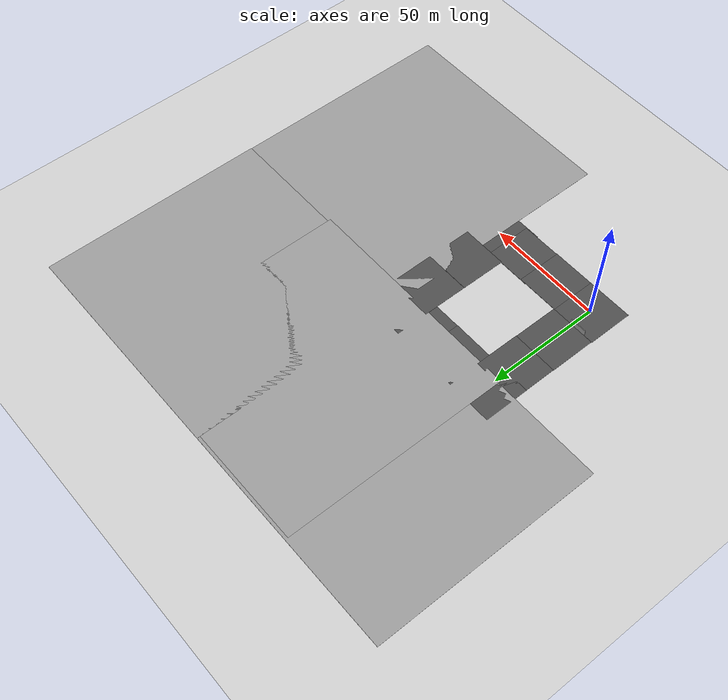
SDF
<sdf version="1.6">
 <world name="default">
  <model name="ground_plane">
   <static>1</static>
   <link name="link">
    <collision name="collision">
     <geometry><plane><normal>0 0 1</normal><size>100 100</size></plane></geometry>
     <surface><friction><ode><mu>100</mu><mu2>50</mu2></ode></friction></surface>
    </collision>
    <visual name="visual">
     <cast_shadows>0</cast_shadows>
     <geometry><plane><normal>0 0 1</normal><size>100 100</size></plane></geometry>
     <material>
      <script><uri>file://media/materials/scripts/gazebo.material</uri><name>Gazebo/Grey</name></script>
     </material>
    </visual>
   </link>
  </model>
  <gravity>0 0 -9.8</gravity>
  <magnetic_field>6e-06 2.3e-05 -4.2e-05</magnetic_field>
  <atmosphere type="adiabatic"/>
  <physics name="default_physics" default="0" type="ode">
   <max_step_size>0.001</max_step_size>
   <real_time_factor>1</real_time_factor>
   <real_time_update_rate>1000</real_time_update_rate>
  </physics>
  <scene><ambient>0.4 0.4 0.4 1</ambient><background>0.7 0.7 0.7 1</background><shadows>1</shadows></scene>
  <audio><device>default</device></audio>
  <spherical_coordinates>
   <surface_model>EARTH_WGS84</surface_model>
   <latitude_deg>0</latitude_deg>
   <longitude_deg>0</longitude_deg>
   <elevation>0</elevation>
   <heading_deg>0</heading_deg>
  </spherical_coordinates>
  <model name="asphalt_plane">
   <static>1</static>
   <link name="link">
    <collision name="collision"><geometry><box><size>20 20 0.1</size></box></geometry></collision>
    <visual name="visual">
     <cast_shadows>0</cast_shadows>
     <geometry><box><size>20 20 0.1</size></box></geometry>
     <material>
      <script>
       <uri>model://asphalt_plane/materials/scripts</uri>
       <uri>model://asphalt_plane/materials/textures</uri>
       <name>vrc/asphalt</name>
      </script>
     </material>
    </visual>
   </link>
   <pose>-0.606607 -0.198248 0 0 -0 0</pose>
  </model>
  <model name="asphalt_plane_clone">
   <static>1</static>
   <link name="link">
    <collision name="collision"><geometry><box><size>20 20 0.1</size></box></geometry></collision>
    <visual name="visual">
     <cast_shadows>0</cast_shadows>
     <geometry><box><size>20 20 0.1</size></box></geometry>
     <material>
      <script>
       <uri>model://asphalt_plane/materials/scripts</uri>
       <uri>model://asphalt_plane/materials/textures</uri>
       <name>vrc/asphalt</name>
      </script>
     </material>
    </visual>
   </link>
   <pose>17.9485 -0.170404 0 0 -0 0</pose>
  </model>
  <model name="asphalt_plane_clone_0">
   <static>1</static>
   <link name="link">
    <collision name="collision"><geometry><box><size>20 20 0.1</size></box></geometry></collision>
    <visual name="visual">
     <cast_shadows>0</cast_shadows>
     <geometry><box><size>20 20 0.1</size></box></geometry>
     <material>
      <script>
       <uri>model://asphalt_plane/materials/scripts</uri>
       <uri>model://asphalt_plane/materials/textures</uri>
       <name>vrc/asphalt</name>
      </script>
     </material>
    </visual>
   </link>
   <pose>35.1442 0.006259 0 0 -0 0</pose>
  </model>
  <model name="ground_plane_0">
   <static>1</static>
   <link name="link">
    <collision name="collision">
     <geometry><plane><normal>0 0 1</normal><size>100 100</size></plane></geometry>
     <surface>
      <contact><collide_bitmask>65535</collide_bitmask></contact>
      <friction><ode><mu>100</mu><mu2>50</mu2></ode></friction>
     </surface>
    </collision>
    <visual name="visual">
     <cast_shadows>0</cast_shadows>
     <geometry><plane><normal>0 0 1</normal><size>100 100</size></plane></geometry>
     <material>
      <script><uri>file://media/materials/scripts/gazebo.material</uri><name>Gazebo/Grey</name></script>
     </material>
    </visual>
   </link>
   <pose>99.8119 -0.012743 0 0 -0 0</pose>
  </model>
  <model name="ground_plane_1">
   <static>1</static>
   <link name="link">
    <collision name="collision">
     <geometry><plane><normal>0 0 1</normal><size>100 100</size></plane></geometry>
     <surface>
      <contact><collide_bitmask>65535</collide_bitmask></contact>
      <friction><ode><mu>100</mu><mu2>50</mu2></ode></friction>
     </surface>
    </collision>
    <visual name="visual">
     <cast_shadows>0</cast_shadows>
     <geometry><plane><normal>0 0 1</normal><size>100 100</size></plane></geometry>
     <material>
      <script><uri>file://media/materials/scripts/gazebo.material</uri><name>Gazebo/Grey</name></script>
     </material>
    </visual>
   </link>
   <pose>-0.11187 99.6243 0 0 -0 0</pose>
  </model>
  <model name="ground_plane_2">
   <static>1</static>
   <link name="link">
    <collision name="collision">
     <geometry><plane><normal>0 0 1</normal><size>100 100</size></plane></geometry>
     <surface>
      <contact><collide_bitmask>65535</collide_bitmask></contact>
      <friction><ode><mu>100</mu><mu2>50</mu2></ode></friction>
     </surface>
    </collision>
    <visual name="visual">
     <cast_shadows>0</cast_shadows>
     <geometry><plane><normal>0 0 1</normal><size>100 100</size></plane></geometry>
     <material>
      <script><uri>file://media/materials/scripts/gazebo.material</uri><name>Gazebo/Grey</name></script>
     </material>
    </visual>
   </link>
   <pose>99.9943 99.6471 0 0 -0 0</pose>
  </model>
  <model name="asphalt_plane_0">
   <static>1</static>
   <link name="link">
    <collision name="collision"><geometry><box><size>20 20 0.1</size></box></geometry></collision>
    <visual name="visual">
     <cast_shadows>0</cast_shadows>
     <geometry><box><size>20 20 0.1</size></box></geometry>
     <material>
      <script>
       <uri>model://asphalt_plane/materials/scripts</uri>
       <uri>model://asphalt_plane/materials/textures</uri>
       <name>vrc/asphalt</name>
      </script>
     </material>
    </visual>
   </link>
   <pose>48.9633 -0.284448 0 0 -0 0</pose>
  </model>
  <model name="asphalt_plane_clone_2">
   <static>1</static>
   <link name="link">
    <collision name="collision"><geometry><box><size>20 20 0.1</size></box></geometry></collision>
    <visual name="visual">
     <cast_shadows>0</cast_shadows>
     <geometry><box><size>20 20 0.1</size></box></geometry>
     <material>
      <script>
       <uri>model://asphalt_plane/materials/scripts</uri>
       <uri>model://asphalt_plane/materials/textures</uri>
       <name>vrc/asphalt</name>
      </script>
     </material>
    </visual>
   </link>
   <pose>48.8467 19.6802 0 0 -0 0</pose>
  </model>
  <model name="asphalt_plane_clone_3">
   <static>1</static>
   <link name="link">
    <collision name="collision"><geometry><box><size>20 20 0.1</size></box></geometry></collision>
    <visual name="visual">
     <cast_shadows>0</cast_shadows>
     <geometry><box><size>20 20 0.1</size></box></geometry>
     <material>
      <script>
       <uri>model://asphalt_plane/materials/scripts</uri>
       <uri>model://asphalt_plane/materials/textures</uri>
       <name>vrc/asphalt</name>
      </script>
     </material>
    </visual>
   </link>
   <pose>48.7888 53.8213 0 0 -0 0</pose>
  </model>
  <model name="asphalt_plane_clone_2_clone">
   <static>1</static>
   <link name="link">
    <collision name="collision"><geometry><box><size>20 20 0.1</size></box></geometry></collision>
    <visual name="visual">
     <cast_shadows>0</cast_shadows>
     <geometry><box><size>20 20 0.1</size></box></geometry>
     <material>
      <script>
       <uri>model://asphalt_plane/materials/scripts</uri>
       <uri>model://asphalt_plane/materials/textures</uri>
       <name>vrc/asphalt</name>
      </script>
     </material>
    </visual>
   </link>
   <pose>48.8807 39.7186 0 0 -0 0</pose>
  </model>
  <model name="asphalt_plane_clone_2_clone_7">
   <static>1</static>
   <link name="link">
    <collision name="collision"><geometry><box><size>20 20 0.1</size></box></geometry></collision>
    <visual name="visual">
     <cast_shadows>0</cast_shadows>
     <geometry><box><size>20 20 0.1</size></box></geometry>
     <material>
      <script>
       <uri>model://asphalt_plane/materials/scripts</uri>
       <uri>model://asphalt_plane/materials/textures</uri>
       <name>vrc/asphalt</name>
      </script>
     </material>
    </visual>
   </link>
   <pose>37.37 53.9061 0 0 -0 0</pose>
  </model>
  <model name="asphalt_plane_clone_2_clone_8">
   <static>1</static>
   <link name="link">
    <collision name="collision"><geometry><box><size>20 20 0.1</size></box></geometry></collision>
    <visual name="visual">
     <cast_shadows>0</cast_shadows>
     <geometry><box><size>20 20 0.1</size></box></geometry>
     <material>
      <script>
       <uri>model://asphalt_plane/materials/scripts</uri>
       <uri>model://asphalt_plane/materials/textures</uri>
       <name>vrc/asphalt</name>
      </script>
     </material>
    </visual>
   </link>
   <pose>19.3681 53.7899 0 0 -0 0</pose>
  </model>
  <model name="asphalt_plane_clone_2_clone_10">
   <static>1</static>
   <link name="link">
    <collision name="collision"><geometry><box><size>20 20 0.1</size></box></geometry></collision>
    <visual name="visual">
     <cast_shadows>0</cast_shadows>
     <geometry><box><size>20 20 0.1</size></box></geometry>
     <material>
      <script>
       <uri>model://asphalt_plane/materials/scripts</uri>
       <uri>model://asphalt_plane/materials/textures</uri>
       <name>vrc/asphalt</name>
      </script>
     </material>
    </visual>
   </link>
   <pose>-0.348205 19.8085 0 0 -0 0</pose>
  </model>
  <model name="asphalt_plane_clone_2_clone_11">
   <static>1</static>
   <link name="link">
    <collision name="collision"><geometry><box><size>20 20 0.1</size></box></geometry></collision>
    <visual name="visual">
     <cast_shadows>0</cast_shadows>
     <geometry><box><size>20 20 0.1</size></box></geometry>
     <material>
      <script>
       <uri>model://asphalt_plane/materials/scripts</uri>
       <uri>model://asphalt_plane/materials/textures</uri>
       <name>vrc/asphalt</name>
      </script>
     </material>
    </visual>
   </link>
   <pose>-0.221319 39.7631 0 0 -0 0</pose>
  </model>
  <model name="grey_wall">
   <static>1</static>
   <link name="link">
    <pose>0 0 1.4 0 -0 0</pose>
    <collision name="collision"><geometry><box><size>7.5 0.2 2.8</size></box></geometry></collision>
    <visual name="visual">
     <cast_shadows>0</cast_shadows>
     <geometry><box><size>7.5 0.2 2.8</size></box></geometry>
     <material>
      <script>
       <uri>model://grey_wall/materials/scripts</uri>
       <uri>model://grey_wall/materials/textures</uri>
       <name>vrc/grey_wall</name>
      </script>
     </material>
    </visual>
   </link>
   <pose>-2.73643 9.71225 0 0 -0 0</pose>
  </model>
  <light name="user_directional_light_0" type="directional">
   <pose>42.8618 62.5582 1 0 -0 0</pose>
   <diffuse>0.5 0.5 0.5 1</diffuse>
   <specular>0.1 0.1 0.1 1</specular>
   <direction>0.1 0.1 -0.9</direction>
   <attenuation>
    <range>20</range>
    <constant>0.5</constant>
    <linear>0.01</linear>
    <quadratic>0.001</quadratic>
   </attenuation>
  </light>
  <model name="asphalt_plane_clone_2_clone_8_clone">
   <static>1</static>
   <link name="link">
    <collision name="collision"><geometry><box><size>20 20 0.1</size></box></geometry></collision>
    <visual name="visual">
     <cast_shadows>0</cast_shadows>
     <geometry><box><size>20 20 0.1</size></box></geometry>
     <material>
      <script>
       <uri>model://asphalt_plane/materials/scripts</uri>
       <uri>model://asphalt_plane/materials/textures</uri>
       <name>vrc/asphalt</name>
      </script>
     </material>
    </visual>
   </link>
   <pose>-0.304578 53.7964 0 0 -0 0</pose>
  </model>
  <model name="ground_plane_3">
   <static>1</static>
   <link name="link">
    <collision name="collision">
     <geometry><plane><normal>0 0 1</normal><size>100 100</size></plane></geometry>
     <surface>
      <contact><collide_bitmask>65535</collide_bitmask></contact>
      <friction><ode><mu>100</mu><mu2>50</mu2></ode></friction>
     </surface>
    </collision>
    <visual name="visual">
     <cast_shadows>0</cast_shadows>
     <geometry><plane><normal>0 0 1</normal><size>100 100</size></plane></geometry>
     <material>
      <script><uri>file://media/materials/scripts/gazebo.material</uri><name>Gazebo/Grey</name></script>
     </material>
    </visual>
   </link>
   <pose>48.6617 98.3291 0 0 -0 0</pose>
  </model>
 </world>
</sdf>
